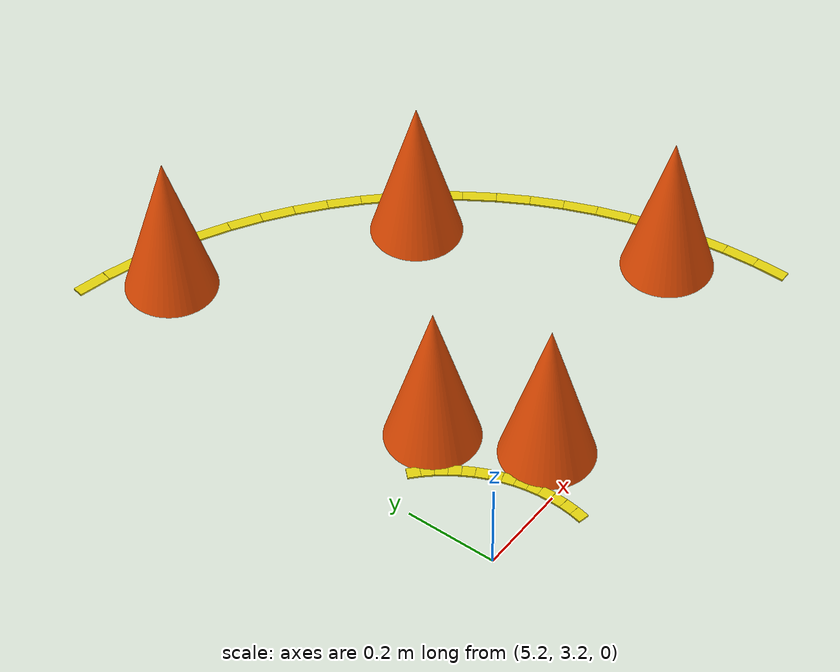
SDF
<sdf version="1.6">
 <world name="limo_competition">
  <include><uri>model://sun</uri></include>
  <model name="right_uturn_outer_4">
   <static>true</static>
   <pose>5.306338464482883 4.320457853824529 0.003 0 0 -0.22490947406381037</pose>
   <link name="link">
    <visual name="visual">
     <geometry><box><size>0.07388611316043771 0.025 0.004</size></box></geometry>
     <material>
      <ambient>0.88 0.82 0.05 1.0</ambient>
      <diffuse>0.88 0.82 0.05 1.0</diffuse>
      <specular>0.05 0.05 0.05 1</specular>
     </material>
    </visual>
   </link>
  </model>
  <model name="right_uturn_outer_5">
   <static>true</static>
   <pose>5.377760305039894 4.301684343635085 0.003 0 0 -0.28916932379633753</pose>
   <link name="link">
    <visual name="visual">
     <geometry><box><size>0.07388611316043814 0.025 0.004</size></box></geometry>
     <material>
      <ambient>0.88 0.82 0.05 1.0</ambient>
      <diffuse>0.88 0.82 0.05 1.0</diffuse>
      <specular>0.05 0.05 0.05 1</specular>
     </material>
    </visual>
   </link>
  </model>
  <model name="right_uturn_outer_6">
   <static>true</static>
   <pose>5.447829181363334 4.278363182339925 0.003 0 0 -0.3534291735288546</pose>
   <link name="link">
    <visual name="visual">
     <geometry><box><size>0.07388611316043825 0.025 0.004</size></box></geometry>
     <material>
      <ambient>0.88 0.82 0.05 1.0</ambient>
      <diffuse>0.88 0.82 0.05 1.0</diffuse>
      <specular>0.05 0.05 0.05 1</specular>
     </material>
    </visual>
   </link>
  </model>
  <model name="right_uturn_outer_7">
   <static>true</static>
   <pose>5.5162558556105035 4.250590637536537 0.003 0 0 -0.41768902326136537</pose>
   <link name="link">
    <visual name="visual">
     <geometry><box><size>0.07388611316043808 0.025 0.004</size></box></geometry>
     <material>
      <ambient>0.88 0.82 0.05 1.0</ambient>
      <diffuse>0.88 0.82 0.05 1.0</diffuse>
      <specular>0.05 0.05 0.05 1</specular>
     </material>
    </visual>
   </link>
  </model>
  <model name="right_uturn_outer_8">
   <static>true</static>
   <pose>5.582757868797031 4.218481351721943 0.003 0 0 -0.4819488729938875</pose>
   <link name="link">
    <visual name="visual">
     <geometry><box><size>0.07388611316043753 0.025 0.004</size></box></geometry>
     <material>
      <ambient>0.88 0.82 0.05 1.0</ambient>
      <diffuse>0.88 0.82 0.05 1.0</diffuse>
      <specular>0.05 0.05 0.05 1</specular>
     </material>
    </visual>
   </link>
  </model>
  <model name="right_uturn_outer_9">
   <static>true</static>
   <pose>5.647060706761444 4.182167869059071 0.003 0 0 -0.5462087227264127</pose>
   <link name="link">
    <visual name="visual">
     <geometry><box><size>0.0738861131604378 0.025 0.004</size></box></geometry>
     <material>
      <ambient>0.88 0.82 0.05 1.0</ambient>
      <diffuse>0.88 0.82 0.05 1.0</diffuse>
      <specular>0.05 0.05 0.05 1</specular>
     </material>
    </visual>
   </link>
  </model>
  <model name="right_uturn_outer_10">
   <static>true</static>
   <pose>5.708898933334246 4.141800088246706 0.003 0 0 -0.6104685724589264</pose>
   <link name="link">
    <visual name="visual">
     <geometry><box><size>0.07388611316043792 0.025 0.004</size></box></geometry>
     <material>
      <ambient>0.88 0.82 0.05 1.0</ambient>
      <diffuse>0.88 0.82 0.05 1.0</diffuse>
      <specular>0.05 0.05 0.05 1</specular>
     </material>
    </visual>
   </link>
  </model>
  <model name="right_uturn_outer_11">
   <static>true</static>
   <pose>5.76801728603388 4.097544643751525 0.003 0 0 -0.6747284221914416</pose>
   <link name="link">
    <visual name="visual">
     <geometry><box><size>0.07388611316043754 0.025 0.004</size></box></geometry>
     <material>
      <ambient>0.88 0.82 0.05 1.0</ambient>
      <diffuse>0.88 0.82 0.05 1.0</diffuse>
      <specular>0.05 0.05 0.05 1</specular>
     </material>
    </visual>
   </link>
  </model>
  <model name="right_uturn_outer_12">
   <static>true</static>
   <pose>5.824171729766649 4.049584217956422 0.003 0 0 -0.7389882719239559</pose>
   <link name="link">
    <visual name="visual">
     <geometry><box><size>0.07388611316043829 0.025 0.004</size></box></geometry>
     <material>
      <ambient>0.88 0.82 0.05 1.0</ambient>
      <diffuse>0.88 0.82 0.05 1.0</diffuse>
      <specular>0.05 0.05 0.05 1</specular>
     </material>
    </visual>
   </link>
  </model>
  <model name="right_uturn_outer_13">
   <static>true</static>
   <pose>5.877130464181022 3.998116787064524 0.003 0 0 -0.8032481216564864</pose>
   <link name="link">
    <visual name="visual">
     <geometry><box><size>0.0738861131604382 0.025 0.004</size></box></geometry>
     <material>
      <ambient>0.88 0.82 0.05 1.0</ambient>
      <diffuse>0.88 0.82 0.05 1.0</diffuse>
      <specular>0.05 0.05 0.05 1</specular>
     </material>
    </visual>
   </link>
  </model>
  <model name="right_uturn_outer_14">
   <static>true</static>
   <pose>5.926674880518047 3.94335480387173 0.003 0 0 -0.8675079713890038</pose>
   <link name="link">
    <visual name="visual">
     <geometry><box><size>0.07388611316043761 0.025 0.004</size></box></geometry>
     <material>
      <ambient>0.88 0.82 0.05 1.0</ambient>
      <diffuse>0.88 0.82 0.05 1.0</diffuse>
      <specular>0.05 0.05 0.05 1</specular>
     </material>
    </visual>
   </link>
  </model>
  <model name="right_uturn_outer_15">
   <static>true</static>
   <pose>5.972600464008101 3.8855243207812147 0.003 0 0 -0.9317678211215145</pose>
   <link name="link">
    <visual name="visual">
     <geometry><box><size>0.07388611316043797 0.025 0.004</size></box></geometry>
     <material>
      <ambient>0.88 0.82 0.05 1.0</ambient>
      <diffuse>0.88 0.82 0.05 1.0</diffuse>
      <specular>0.05 0.05 0.05 1</specular>
     </material>
    </visual>
   </link>
  </model>
  <model name="right_uturn_outer_16">
   <static>true</static>
   <pose>6.014717638088946 3.8248640566800076 0.003 0 0 -0.9960276708540327</pose>
   <link name="link">
    <visual name="visual">
     <geometry><box><size>0.073886113160438 0.025 0.004</size></box></geometry>
     <material>
      <ambient>0.88 0.82 0.05 1.0</ambient>
      <diffuse>0.88 0.82 0.05 1.0</diffuse>
      <specular>0.05 0.05 0.05 1</specular>
     </material>
    </visual>
   </link>
  </model>
  <model name="right_uturn_outer_17">
   <static>true</static>
   <pose>6.052852546960246 3.761624411529501 0.003 0 0 -1.0602875205865574</pose>
   <link name="link">
    <visual name="visual">
     <geometry><box><size>0.07388611316043778 0.025 0.004</size></box></geometry>
     <material>
      <ambient>0.88 0.82 0.05 1.0</ambient>
      <diffuse>0.88 0.82 0.05 1.0</diffuse>
      <specular>0.05 0.05 0.05 1</specular>
     </material>
    </visual>
   </link>
  </model>
  <model name="right_uturn_outer_18">
   <static>true</static>
   <pose>6.086847773244241 3.696066432737562 0.003 0 0 -1.124547370319076</pose>
   <link name="link">
    <visual name="visual">
     <geometry><box><size>0.073886113160438 0.025 0.004</size></box></geometry>
     <material>
      <ambient>0.88 0.82 0.05 1.0</ambient>
      <diffuse>0.88 0.82 0.05 1.0</diffuse>
      <specular>0.05 0.05 0.05 1</specular>
     </material>
    </visual>
   </link>
  </model>
  <model name="right_uturn_outer_19">
   <static>true</static>
   <pose>6.1165629877901235 3.62846073757897 0.003 0 0 -1.1888072200515847</pose>
   <link name="link">
    <visual name="visual">
     <geometry><box><size>0.073886113160438 0.025 0.004</size></box></geometry>
     <material>
      <ambient>0.88 0.82 0.05 1.0</ambient>
      <diffuse>0.88 0.82 0.05 1.0</diffuse>
      <specular>0.05 0.05 0.05 1</specular>
     </material>
    </visual>
   </link>
  </model>
  <model name="right_uturn_outer_20">
   <static>true</static>
   <pose>6.141875528939801 3.5590863961123276 0.003 0 0 -1.253067069784118</pose>
   <link name="link">
    <visual name="visual">
     <geometry><box><size>0.07388611316043787 0.025 0.004</size></box></geometry>
     <material>
      <ambient>0.88 0.82 0.05 1.0</ambient>
      <diffuse>0.88 0.82 0.05 1.0</diffuse>
      <specular>0.05 0.05 0.05 1</specular>
     </material>
    </visual>
   </link>
  </model>
  <model name="right_uturn_outer_21">
   <static>true</static>
   <pose>6.162680908863876 3.488229779204665 0.003 0 0 -1.3173269195166295</pose>
   <link name="link">
    <visual name="visual">
     <geometry><box><size>0.07388611316043839 0.025 0.004</size></box></geometry>
     <material>
      <ambient>0.88 0.82 0.05 1.0</ambient>
      <diffuse>0.88 0.82 0.05 1.0</diffuse>
      <specular>0.05 0.05 0.05 1</specular>
     </material>
    </visual>
   </link>
  </model>
  <model name="right_uturn_outer_22">
   <static>true</static>
   <pose>6.178893244877743 3.4161833764189753 0.003 0 0 -1.3815867692491481</pose>
   <link name="link">
    <visual name="visual">
     <geometry><box><size>0.07388611316043743 0.025 0.004</size></box></geometry>
     <material>
      <ambient>0.88 0.82 0.05 1.0</ambient>
      <diffuse>0.88 0.82 0.05 1.0</diffuse>
      <specular>0.05 0.05 0.05 1</specular>
     </material>
    </visual>
   </link>
  </model>
  <model name="right_uturn_outer_23">
   <static>true</static>
   <pose>6.190445613957378 3.343244588644348 0.003 0 0 -1.4458466189816699</pose>
   <link name="link">
    <visual name="visual">
     <geometry><box><size>0.07388611316043785 0.025 0.004</size></box></geometry>
     <material>
      <ambient>0.88 0.82 0.05 1.0</ambient>
      <diffuse>0.88 0.82 0.05 1.0</diffuse>
      <specular>0.05 0.05 0.05 1</specular>
     </material>
    </visual>
   </link>
  </model>
  <model name="right_uturn_outer_24">
   <static>true</static>
   <pose>6.197290328991382 3.26971450045259 0.003 0 0 -1.5101064687141834</pose>
   <link name="link">
    <visual name="visual">
     <geometry><box><size>0.07388611316043785 0.025 0.004</size></box></geometry>
     <material>
      <ambient>0.88 0.82 0.05 1.0</ambient>
      <diffuse>0.88 0.82 0.05 1.0</diffuse>
      <specular>0.05 0.05 0.05 1</specular>
     </material>
    </visual>
   </link>
  </model>
  <model name="right_uturn_outer_25">
   <static>true</static>
   <pose>6.199399135628979 3.195896637248962 0.003 0 0 -1.5743663184466952</pose>
   <link name="link">
    <visual name="visual">
     <geometry><box><size>0.07388611316043815 0.025 0.004</size></box></geometry>
     <material>
      <ambient>0.88 0.82 0.05 1.0</ambient>
      <diffuse>0.88 0.82 0.05 1.0</diffuse>
      <specular>0.05 0.05 0.05 1</specular>
     </material>
    </visual>
   </link>
  </model>
  <model name="right_uturn_inner_10">
   <static>true</static>
   <pose>5.287397095165428 3.4568147306876513 0.003 0 0 -0.7461282552275593</pose>
   <link name="link">
    <visual name="visual">
     <geometry><box><size>0.027481871031348408 0.025 0.004</size></box></geometry>
     <material>
      <ambient>0.88 0.82 0.05 1.0</ambient>
      <diffuse>0.88 0.82 0.05 1.0</diffuse>
      <specular>0.05 0.05 0.05 1</specular>
     </material>
    </visual>
   </link>
  </model>
  <model name="right_uturn_inner_11">
   <static>true</static>
   <pose>5.306814730687652 3.4373970951654282 0.003 0 0 -0.8246680715673262</pose>
   <link name="link">
    <visual name="visual">
     <geometry><box><size>0.027481871031348082 0.025 0.004</size></box></geometry>
     <material>
      <ambient>0.88 0.82 0.05 1.0</ambient>
      <diffuse>0.88 0.82 0.05 1.0</diffuse>
      <specular>0.05 0.05 0.05 1</specular>
     </material>
    </visual>
   </link>
  </model>
  <model name="right_uturn_inner_12">
   <static>true</static>
   <pose>5.324649017995622 3.416515827608965 0.003 0 0 -0.9032078879070551</pose>
   <link name="link">
    <visual name="visual">
     <geometry><box><size>0.027481871031347797 0.025 0.004</size></box></geometry>
     <material>
      <ambient>0.88 0.82 0.05 1.0</ambient>
      <diffuse>0.88 0.82 0.05 1.0</diffuse>
      <specular>0.05 0.05 0.05 1</specular>
     </material>
    </visual>
   </link>
  </model>
  <model name="right_uturn_inner_13">
   <static>true</static>
   <pose>5.340790002777582 3.3942996679764743 0.003 0 0 -0.9817477042468329</pose>
   <link name="link">
    <visual name="visual">
     <geometry><box><size>0.02748187103134787 0.025 0.004</size></box></geometry>
     <material>
      <ambient>0.88 0.82 0.05 1.0</ambient>
      <diffuse>0.88 0.82 0.05 1.0</diffuse>
      <specular>0.05 0.05 0.05 1</specular>
     </material>
    </visual>
   </link>
  </model>
  <model name="right_uturn_inner_14">
   <static>true</static>
   <pose>5.35513817049493 3.370885586279712 0.003 0 0 -1.0602875205865447</pose>
   <link name="link">
    <visual name="visual">
     <geometry><box><size>0.027481871031348356 0.025 0.004</size></box></geometry>
     <material>
      <ambient>0.88 0.82 0.05 1.0</ambient>
      <diffuse>0.88 0.82 0.05 1.0</diffuse>
      <specular>0.05 0.05 0.05 1</specular>
     </material>
    </visual>
   </link>
  </model>
  <model name="right_uturn_inner_15">
   <static>true</static>
   <pose>5.36760505992244 3.3464179381183117 0.003 0 0 -1.1388273369262956</pose>
   <link name="link">
    <visual name="visual">
     <geometry><box><size>0.027481871031347933 0.025 0.004</size></box></geometry>
     <material>
      <ambient>0.88 0.82 0.05 1.0</ambient>
      <diffuse>0.88 0.82 0.05 1.0</diffuse>
      <specular>0.05 0.05 0.05 1</specular>
     </material>
    </visual>
   </link>
  </model>
  <model name="right_uturn_inner_16">
   <static>true</static>
   <pose>5.378113808541126 3.3210475746795067 0.003 0 0 -1.2173671532660637</pose>
   <link name="link">
    <visual name="visual">
     <geometry><box><size>0.027481871031347624 0.025 0.004</size></box></geometry>
     <material>
      <ambient>0.88 0.82 0.05 1.0</ambient>
      <diffuse>0.88 0.82 0.05 1.0</diffuse>
      <specular>0.05 0.05 0.05 1</specular>
     </material>
    </visual>
   </link>
  </model>
  <model name="right_uturn_inner_17">
   <static>true</static>
   <pose>5.386599626421245 3.2949309126903996 0.003 0 0 -1.2959069696057763</pose>
   <link name="link">
    <visual name="visual">
     <geometry><box><size>0.02748187103134849 0.025 0.004</size></box></geometry>
     <material>
      <ambient>0.88 0.82 0.05 1.0</ambient>
      <diffuse>0.88 0.82 0.05 1.0</diffuse>
      <specular>0.05 0.05 0.05 1</specular>
     </material>
    </visual>
   </link>
  </model>
  <model name="right_uturn_inner_18">
   <static>true</static>
   <pose>5.393010195673742 3.268228970056824 0.003 0 0 -1.3744467859455392</pose>
   <link name="link">
    <visual name="visual">
     <geometry><box><size>0.027481871031347867 0.025 0.004</size></box></geometry>
     <material>
      <ambient>0.88 0.82 0.05 1.0</ambient>
      <diffuse>0.88 0.82 0.05 1.0</diffuse>
      <specular>0.05 0.05 0.05 1</specular>
     </material>
    </visual>
   </link>
  </model>
  <model name="right_uturn_inner_19">
   <static>true</static>
   <pose>5.397305993007446 3.2411063731344134 0.003 0 0 -1.4529866022852809</pose>
   <link name="link">
    <visual name="visual">
     <geometry><box><size>0.02748187103134795 0.025 0.004</size></box></geometry>
     <material>
      <ambient>0.88 0.82 0.05 1.0</ambient>
      <diffuse>0.88 0.82 0.05 1.0</diffuse>
      <specular>0.05 0.05 0.05 1</specular>
     </material>
    </visual>
   </link>
  </model>
  <model name="right_uturn_inner_20">
   <static>true</static>
   <pose>5.399460533403297 3.213730341752373 0.003 0 0 -1.5315264186250352</pose>
   <link name="link">
    <visual name="visual">
     <geometry><box><size>0.027481871031348016 0.025 0.004</size></box></geometry>
     <material>
      <ambient>0.88 0.82 0.05 1.0</ambient>
      <diffuse>0.88 0.82 0.05 1.0</diffuse>
      <specular>0.05 0.05 0.05 1</specular>
     </material>
    </visual>
   </link>
  </model>
  <model name="right_uturn_inner_21">
   <static>true</static>
   <pose>5.399460533403297 3.1862696582476273 0.003 0 0 -1.610066234964758</pose>
   <link name="link">
    <visual name="visual">
     <geometry><box><size>0.027481871031348016 0.025 0.004</size></box></geometry>
     <material>
      <ambient>0.88 0.82 0.05 1.0</ambient>
      <diffuse>0.88 0.82 0.05 1.0</diffuse>
      <specular>0.05 0.05 0.05 1</specular>
     </material>
    </visual>
   </link>
  </model>
  <model name="right_uturn_inner_22">
   <static>true</static>
   <pose>5.397305993007446 3.158893626865587 0.003 0 0 -1.6886060513045125</pose>
   <link name="link">
    <visual name="visual">
     <geometry><box><size>0.02748187103134795 0.025 0.004</size></box></geometry>
     <material>
      <ambient>0.88 0.82 0.05 1.0</ambient>
      <diffuse>0.88 0.82 0.05 1.0</diffuse>
      <specular>0.05 0.05 0.05 1</specular>
     </material>
    </visual>
   </link>
  </model>
  <model name="right_uturn_inner_23">
   <static>true</static>
   <pose>5.393010195673742 3.1317710299431765 0.003 0 0 -1.767145867644254</pose>
   <link name="link">
    <visual name="visual">
     <geometry><box><size>0.027481871031347867 0.025 0.004</size></box></geometry>
     <material>
      <ambient>0.88 0.82 0.05 1.0</ambient>
      <diffuse>0.88 0.82 0.05 1.0</diffuse>
      <specular>0.05 0.05 0.05 1</specular>
     </material>
    </visual>
   </link>
  </model>
  <model name="cone_02">
   <static>true</static>
   <pose>5.409121150491952 4.186677251825204 0.0 0.0 0.0 0.0</pose>
   <link name="link">
    <collision name="collision">
     <geometry>
      <mesh><uri>file:///home/td/Workspace/limo_competition_ws/src/webot_arena/meshes/traffic_cone.stl</uri></mesh>
     </geometry>
    </collision>
    <visual name="visual">
     <geometry>
      <mesh><uri>file:///home/td/Workspace/limo_competition_ws/src/webot_arena/meshes/traffic_cone.stl</uri></mesh>
     </geometry>
     <material>
      <ambient>0.98 0.33 0.02 1.0</ambient>
      <diffuse>0.98 0.33 0.02 1.0</diffuse>
      <specular>0.05 0.05 0.05 1</specular>
     </material>
    </visual>
   </link>
  </model>
  <model name="cone_03">
   <static>true</static>
   <pose>5.39471999940354 3.489254424358943 0.0 0.0 0.0 0.0</pose>
   <link name="link">
    <collision name="collision">
     <geometry>
      <mesh><uri>file:///home/td/Workspace/limo_competition_ws/src/webot_arena/meshes/traffic_cone.stl</uri></mesh>
     </geometry>
    </collision>
    <visual name="visual">
     <geometry>
      <mesh><uri>file:///home/td/Workspace/limo_competition_ws/src/webot_arena/meshes/traffic_cone.stl</uri></mesh>
     </geometry>
     <material>
      <ambient>0.98 0.33 0.02 1.0</ambient>
      <diffuse>0.98 0.33 0.02 1.0</diffuse>
      <specular>0.05 0.05 0.05 1</specular>
     </material>
    </visual>
   </link>
  </model>
  <model name="cone_04">
   <static>true</static>
   <pose>5.854346665274926 3.8749269901708665 0.0 0.0 0.0 0.0</pose>
   <link name="link">
    <collision name="collision">
     <geometry>
      <mesh><uri>file:///home/td/Workspace/limo_competition_ws/src/webot_arena/meshes/traffic_cone.stl</uri></mesh>
     </geometry>
    </collision>
    <visual name="visual">
     <geometry>
      <mesh><uri>file:///home/td/Workspace/limo_competition_ws/src/webot_arena/meshes/traffic_cone.stl</uri></mesh>
     </geometry>
     <material>
      <ambient>0.98 0.33 0.02 1.0</ambient>
      <diffuse>0.98 0.33 0.02 1.0</diffuse>
      <specular>0.05 0.05 0.05 1</specular>
     </material>
    </visual>
   </link>
  </model>
  <model name="cone_05">
   <static>true</static>
   <pose>5.493163488855493 3.2781416799501186 0.0 0.0 0.0 0.0</pose>
   <link name="link">
    <collision name="collision">
     <geometry>
      <mesh><uri>file:///home/td/Workspace/limo_competition_ws/src/webot_arena/meshes/traffic_cone.stl</uri></mesh>
     </geometry>
    </collision>
    <visual name="visual">
     <geometry>
      <mesh><uri>file:///home/td/Workspace/limo_competition_ws/src/webot_arena/meshes/traffic_cone.stl</uri></mesh>
     </geometry>
     <material>
      <ambient>0.98 0.33 0.02 1.0</ambient>
      <diffuse>0.98 0.33 0.02 1.0</diffuse>
      <specular>0.05 0.05 0.05 1</specular>
     </material>
    </visual>
   </link>
  </model>
  <model name="cone_06">
   <static>true</static>
   <pose>6.0840481406628175 3.382330586550277 0.0 0.0 0.0 0.0</pose>
   <link name="link">
    <collision name="collision">
     <geometry>
      <mesh><uri>file:///home/td/Workspace/limo_competition_ws/src/webot_arena/meshes/traffic_cone.stl</uri></mesh>
     </geometry>
    </collision>
    <visual name="visual">
     <geometry>
      <mesh><uri>file:///home/td/Workspace/limo_competition_ws/src/webot_arena/meshes/traffic_cone.stl</uri></mesh>
     </geometry>
     <material>
      <ambient>0.98 0.33 0.02 1.0</ambient>
      <diffuse>0.98 0.33 0.02 1.0</diffuse>
      <specular>0.05 0.05 0.05 1</specular>
     </material>
    </visual>
   </link>
  </model>
 </world>
</sdf>
